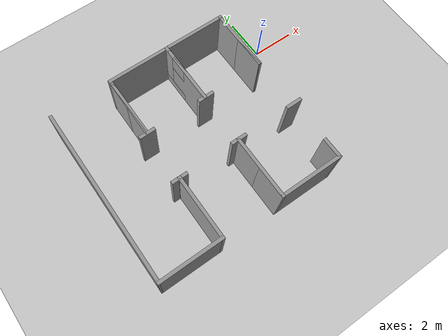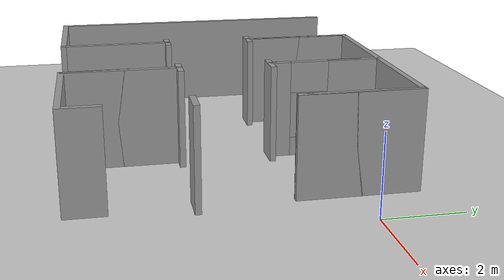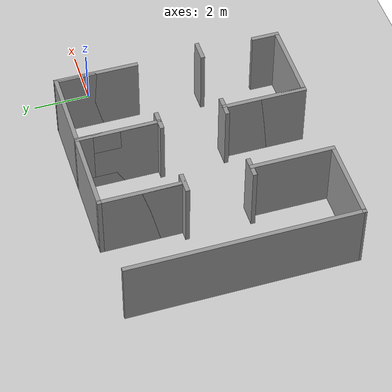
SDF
<sdf version="1.7">
 <world name="default">
  <model name="ground_plane">
   <static>1</static>
   <link name="link">
    <collision name="collision">
     <geometry><plane><normal>0 0 1</normal><size>100 100</size></plane></geometry>
     <surface>
      <contact><collide_bitmask>65535</collide_bitmask></contact>
      <friction><ode><mu>100</mu><mu2>50</mu2></ode></friction>
     </surface>
    </collision>
    <visual name="visual">
     <cast_shadows>0</cast_shadows>
     <geometry><plane><normal>0 0 1</normal><size>100 100</size></plane></geometry>
     <material>
      <script><uri>file://media/materials/scripts/gazebo.material</uri><name>Gazebo/Grey</name></script>
     </material>
    </visual>
   </link>
  </model>
  <model name="test_office_top">
   <link name="Wall_11">
    <pose>-11.0535 2.61067 0 0 0 -1.5708</pose>
    <visual name="Wall_11_Visual">
     <pose>0 0 1.25 0 -0 0</pose>
     <geometry><box><size>3 0.15 2.5</size></box></geometry>
     <material>
      <script><uri>file://media/materials/scripts/gazebo.material</uri><name>Gazebo/Grey</name></script>
      <ambient>1 1 1 1</ambient>
      <shader type="pixel"/>
     </material>
     <meta><layer>0</layer></meta>
    </visual>
    <collision name="Wall_11_Collision">
     <pose>0 0 1.25 0 -0 0</pose>
     <geometry><box><size>3 0.15 2.5</size></box></geometry>
     <surface>
      <friction>
       <ode><mu>1</mu><mu2>1</mu2><fdir1>0 0 0</fdir1><slip1>0</slip1><slip2>0</slip2></ode>
       <torsional>
        <coefficient>1</coefficient>
        <patch_radius>0</patch_radius>
        <surface_radius>0</surface_radius>
        <use_patch_radius>1</use_patch_radius>
        <ode><slip>0</slip></ode>
       </torsional>
      </friction>
      <bounce><restitution_coefficient>0</restitution_coefficient><threshold>1e+06</threshold></bounce>
      <contact>
       <collide_without_contact>0</collide_without_contact>
       <collide_without_contact_bitmask>1</collide_without_contact_bitmask>
       <collide_bitmask>1</collide_bitmask>
       <ode>
        <soft_cfm>0</soft_cfm>
        <soft_erp>0.2</soft_erp>
        <kp>1e+13</kp>
        <kd>1</kd>
        <max_vel>0.01</max_vel>
        <min_depth>0</min_depth>
       </ode>
       <bullet>
        <split_impulse>1</split_impulse>
        <split_impulse_penetration_threshold>-0.01</split_impulse_penetration_threshold>
        <soft_cfm>0</soft_cfm>
        <soft_erp>0.2</soft_erp>
        <kp>1e+13</kp>
        <kd>1</kd>
       </bullet>
      </contact>
     </surface>
    </collision>
   </link>
   <link name="Wall_12">
    <pose>-11.0535 2.61067 0 0 -0 1.5708</pose>
    <visual name="Wall_12_Visual">
     <pose>0 0 1.25 0 -0 0</pose>
     <geometry><box><size>3 0.15 2.5</size></box></geometry>
     <material>
      <script><uri>file://media/materials/scripts/gazebo.material</uri><name>Gazebo/Grey</name></script>
      <ambient>1 1 1 1</ambient>
      <shader type="pixel"/>
     </material>
     <meta><layer>0</layer></meta>
    </visual>
    <collision name="Wall_12_Collision">
     <pose>0 0 1.25 0 -0 0</pose>
     <geometry><box><size>3 0.15 2.5</size></box></geometry>
     <surface>
      <friction>
       <ode><mu>1</mu><mu2>1</mu2><fdir1>0 0 0</fdir1><slip1>0</slip1><slip2>0</slip2></ode>
       <torsional>
        <coefficient>1</coefficient>
        <patch_radius>0</patch_radius>
        <surface_radius>0</surface_radius>
        <use_patch_radius>1</use_patch_radius>
        <ode><slip>0</slip></ode>
       </torsional>
      </friction>
      <bounce><restitution_coefficient>0</restitution_coefficient><threshold>1e+06</threshold></bounce>
      <contact>
       <collide_without_contact>0</collide_without_contact>
       <collide_without_contact_bitmask>1</collide_without_contact_bitmask>
       <collide_bitmask>1</collide_bitmask>
       <ode>
        <soft_cfm>0</soft_cfm>
        <soft_erp>0.2</soft_erp>
        <kp>1e+13</kp>
        <kd>1</kd>
        <max_vel>0.01</max_vel>
        <min_depth>0</min_depth>
       </ode>
       <bullet>
        <split_impulse>1</split_impulse>
        <split_impulse_penetration_threshold>-0.01</split_impulse_penetration_threshold>
        <soft_cfm>0</soft_cfm>
        <soft_erp>0.2</soft_erp>
        <kp>1e+13</kp>
        <kd>1</kd>
       </bullet>
      </contact>
     </surface>
    </collision>
   </link>
   <link name="Wall_13">
    <pose>-9.62852 4.03566 0 0 -0 0</pose>
    <visual name="Wall_13_Visual">
     <pose>0 0 1.25 0 -0 0</pose>
     <geometry><box><size>3 0.15 2.5</size></box></geometry>
     <material>
      <script><uri>file://media/materials/scripts/gazebo.material</uri><name>Gazebo/Grey</name></script>
      <ambient>1 1 1 1</ambient>
      <shader type="pixel"/>
     </material>
     <meta><layer>0</layer></meta>
    </visual>
    <collision name="Wall_13_Collision">
     <pose>0 0 1.25 0 -0 0</pose>
     <geometry><box><size>3 0.15 2.5</size></box></geometry>
     <surface>
      <friction>
       <ode><mu>1</mu><mu2>1</mu2><fdir1>0 0 0</fdir1><slip1>0</slip1><slip2>0</slip2></ode>
       <torsional>
        <coefficient>1</coefficient>
        <patch_radius>0</patch_radius>
        <surface_radius>0</surface_radius>
        <use_patch_radius>1</use_patch_radius>
        <ode><slip>0</slip></ode>
       </torsional>
      </friction>
      <bounce><restitution_coefficient>0</restitution_coefficient><threshold>1e+06</threshold></bounce>
      <contact>
       <collide_without_contact>0</collide_without_contact>
       <collide_without_contact_bitmask>1</collide_without_contact_bitmask>
       <collide_bitmask>1</collide_bitmask>
       <ode>
        <soft_cfm>0</soft_cfm>
        <soft_erp>0.2</soft_erp>
        <kp>1e+13</kp>
        <kd>1</kd>
        <max_vel>0.01</max_vel>
        <min_depth>0</min_depth>
       </ode>
       <bullet>
        <split_impulse>1</split_impulse>
        <split_impulse_penetration_threshold>-0.01</split_impulse_penetration_threshold>
        <soft_cfm>0</soft_cfm>
        <soft_erp>0.2</soft_erp>
        <kp>1e+13</kp>
        <kd>1</kd>
       </bullet>
      </contact>
     </surface>
    </collision>
   </link>
   <link name="Wall_14">
    <pose>-8.20352 2.61067 0 0 0 -1.5708</pose>
    <visual name="Wall_14_Visual">
     <pose>0 0 1.25 0 -0 0</pose>
     <geometry><box><size>3 0.15 2.5</size></box></geometry>
     <material>
      <script><uri>file://media/materials/scripts/gazebo.material</uri><name>Gazebo/Grey</name></script>
      <ambient>1 1 1 1</ambient>
      <shader type="pixel"/>
     </material>
     <meta><layer>0</layer></meta>
    </visual>
    <collision name="Wall_14_Collision">
     <pose>0 0 1.25 0 -0 0</pose>
     <geometry><box><size>3 0.15 2.5</size></box></geometry>
     <surface>
      <friction>
       <ode><mu>1</mu><mu2>1</mu2><fdir1>0 0 0</fdir1><slip1>0</slip1><slip2>0</slip2></ode>
       <torsional>
        <coefficient>1</coefficient>
        <patch_radius>0</patch_radius>
        <surface_radius>0</surface_radius>
        <use_patch_radius>1</use_patch_radius>
        <ode><slip>0</slip></ode>
       </torsional>
      </friction>
      <bounce><restitution_coefficient>0</restitution_coefficient><threshold>1e+06</threshold></bounce>
      <contact>
       <collide_without_contact>0</collide_without_contact>
       <collide_without_contact_bitmask>1</collide_without_contact_bitmask>
       <collide_bitmask>1</collide_bitmask>
       <ode>
        <soft_cfm>0</soft_cfm>
        <soft_erp>0.2</soft_erp>
        <kp>1e+13</kp>
        <kd>1</kd>
        <max_vel>0.01</max_vel>
        <min_depth>0</min_depth>
       </ode>
       <bullet>
        <split_impulse>1</split_impulse>
        <split_impulse_penetration_threshold>-0.01</split_impulse_penetration_threshold>
        <soft_cfm>0</soft_cfm>
        <soft_erp>0.2</soft_erp>
        <kp>1e+13</kp>
        <kd>1</kd>
       </bullet>
      </contact>
     </surface>
    </collision>
   </link>
   <link name="Wall_15">
    <pose>-8.20352 2.61067 0 0 -0 1.5708</pose>
    <visual name="Wall_15_Visual_0">
     <pose>-1.21259 0 1.25 0 -0 0</pose>
     <geometry><box><size>0.574817 0.15 2.5</size></box></geometry>
     <material>
      <script><uri>file://media/materials/scripts/gazebo.material</uri><name>Gazebo/Grey</name></script>
      <ambient>1 1 1 1</ambient>
      <shader type="pixel"/>
     </material>
     <meta><layer>0</layer></meta>
    </visual>
    <visual name="Wall_15_Visual_1">
     <pose>0.287408 0 0.25 0 -0 0</pose>
     <geometry><box><size>2.42518 0.15 0.5</size></box></geometry>
     <material>
      <script><uri>file://media/materials/scripts/gazebo.material</uri><name>Gazebo/Grey</name></script>
      <ambient>1 1 1 1</ambient>
      <shader type="pixel"/>
     </material>
     <meta><layer>0</layer></meta>
    </visual>
    <visual name="Wall_15_Visual_2">
     <pose>1.18741 0 1.5 0 -0 0</pose>
     <geometry><box><size>0.625183 0.15 2</size></box></geometry>
     <material>
      <script><uri>file://media/materials/scripts/gazebo.material</uri><name>Gazebo/Grey</name></script>
      <ambient>1 1 1 1</ambient>
      <shader type="pixel"/>
     </material>
     <meta><layer>0</layer></meta>
    </visual>
    <visual name="Wall_15_Visual_3">
     <pose>-0.025183 0 2.1 0 -0 0</pose>
     <geometry><box><size>1.8 0.15 0.8</size></box></geometry>
     <material>
      <script><uri>file://media/materials/scripts/gazebo.material</uri><name>Gazebo/Grey</name></script>
      <ambient>1 1 1 1</ambient>
      <shader type="pixel"/>
     </material>
     <meta><layer>0</layer></meta>
    </visual>
    <collision name="Wall_15_Collision_3">
     <pose>-0.025183 0 2.1 0 -0 0</pose>
     <geometry><box><size>1.8 0.15 0.8</size></box></geometry>
     <surface>
      <friction>
       <ode><mu>1</mu><mu2>1</mu2><fdir1>0 0 0</fdir1><slip1>0</slip1><slip2>0</slip2></ode>
       <torsional>
        <coefficient>1</coefficient>
        <patch_radius>0</patch_radius>
        <surface_radius>0</surface_radius>
        <use_patch_radius>1</use_patch_radius>
        <ode><slip>0</slip></ode>
       </torsional>
      </friction>
      <bounce><restitution_coefficient>0</restitution_coefficient><threshold>1e+06</threshold></bounce>
      <contact>
       <collide_without_contact>0</collide_without_contact>
       <collide_without_contact_bitmask>1</collide_without_contact_bitmask>
       <collide_bitmask>1</collide_bitmask>
       <ode>
        <soft_cfm>0</soft_cfm>
        <soft_erp>0.2</soft_erp>
        <kp>1e+13</kp>
        <kd>1</kd>
        <max_vel>0.01</max_vel>
        <min_depth>0</min_depth>
       </ode>
       <bullet>
        <split_impulse>1</split_impulse>
        <split_impulse_penetration_threshold>-0.01</split_impulse_penetration_threshold>
        <soft_cfm>0</soft_cfm>
        <soft_erp>0.2</soft_erp>
        <kp>1e+13</kp>
        <kd>1</kd>
       </bullet>
      </contact>
     </surface>
    </collision>
    <collision name="Wall_15_Collision_0">
     <pose>-1.21259 0 1.25 0 -0 0</pose>
     <geometry><box><size>0.574817 0.15 2.5</size></box></geometry>
     <surface>
      <friction>
       <ode><mu>1</mu><mu2>1</mu2><fdir1>0 0 0</fdir1><slip1>0</slip1><slip2>0</slip2></ode>
       <torsional>
        <coefficient>1</coefficient>
        <patch_radius>0</patch_radius>
        <surface_radius>0</surface_radius>
        <use_patch_radius>1</use_patch_radius>
        <ode><slip>0</slip></ode>
       </torsional>
      </friction>
      <bounce><restitution_coefficient>0</restitution_coefficient><threshold>1e+06</threshold></bounce>
      <contact>
       <collide_without_contact>0</collide_without_contact>
       <collide_without_contact_bitmask>1</collide_without_contact_bitmask>
       <collide_bitmask>1</collide_bitmask>
       <ode>
        <soft_cfm>0</soft_cfm>
        <soft_erp>0.2</soft_erp>
        <kp>1e+13</kp>
        <kd>1</kd>
        <max_vel>0.01</max_vel>
        <min_depth>0</min_depth>
       </ode>
       <bullet>
        <split_impulse>1</split_impulse>
        <split_impulse_penetration_threshold>-0.01</split_impulse_penetration_threshold>
        <soft_cfm>0</soft_cfm>
        <soft_erp>0.2</soft_erp>
        <kp>1e+13</kp>
        <kd>1</kd>
       </bullet>
      </contact>
     </surface>
    </collision>
    <collision name="Wall_15_Collision_1">
     <pose>0.287408 0 0.25 0 -0 0</pose>
     <geometry><box><size>2.42518 0.15 0.5</size></box></geometry>
     <surface>
      <friction>
       <ode><mu>1</mu><mu2>1</mu2><fdir1>0 0 0</fdir1><slip1>0</slip1><slip2>0</slip2></ode>
       <torsional>
        <coefficient>1</coefficient>
        <patch_radius>0</patch_radius>
        <surface_radius>0</surface_radius>
        <use_patch_radius>1</use_patch_radius>
        <ode><slip>0</slip></ode>
       </torsional>
      </friction>
      <bounce><restitution_coefficient>0</restitution_coefficient><threshold>1e+06</threshold></bounce>
      <contact>
       <collide_without_contact>0</collide_without_contact>
       <collide_without_contact_bitmask>1</collide_without_contact_bitmask>
       <collide_bitmask>1</collide_bitmask>
       <ode>
        <soft_cfm>0</soft_cfm>
        <soft_erp>0.2</soft_erp>
        <kp>1e+13</kp>
        <kd>1</kd>
        <max_vel>0.01</max_vel>
        <min_depth>0</min_depth>
       </ode>
       <bullet>
        <split_impulse>1</split_impulse>
        <split_impulse_penetration_threshold>-0.01</split_impulse_penetration_threshold>
        <soft_cfm>0</soft_cfm>
        <soft_erp>0.2</soft_erp>
        <kp>1e+13</kp>
        <kd>1</kd>
       </bullet>
      </contact>
     </surface>
    </collision>
    <collision name="Wall_15_Collision_2">
     <pose>1.18741 0 1.5 0 -0 0</pose>
     <geometry><box><size>0.625183 0.15 2</size></box></geometry>
     <surface>
      <friction>
       <ode><mu>1</mu><mu2>1</mu2><fdir1>0 0 0</fdir1><slip1>0</slip1><slip2>0</slip2></ode>
       <torsional>
        <coefficient>1</coefficient>
        <patch_radius>0</patch_radius>
        <surface_radius>0</surface_radius>
        <use_patch_radius>1</use_patch_radius>
        <ode><slip>0</slip></ode>
       </torsional>
      </friction>
      <bounce><restitution_coefficient>0</restitution_coefficient><threshold>1e+06</threshold></bounce>
      <contact>
       <collide_without_contact>0</collide_without_contact>
       <collide_without_contact_bitmask>1</collide_without_contact_bitmask>
       <collide_bitmask>1</collide_bitmask>
       <ode>
        <soft_cfm>0</soft_cfm>
        <soft_erp>0.2</soft_erp>
        <kp>1e+13</kp>
        <kd>1</kd>
        <max_vel>0.01</max_vel>
        <min_depth>0</min_depth>
       </ode>
       <bullet>
        <split_impulse>1</split_impulse>
        <split_impulse_penetration_threshold>-0.01</split_impulse_penetration_threshold>
        <soft_cfm>0</soft_cfm>
        <soft_erp>0.2</soft_erp>
        <kp>1e+13</kp>
        <kd>1</kd>
       </bullet>
      </contact>
     </surface>
    </collision>
   </link>
   <link name="Wall_16">
    <pose>-6.77852 4.03566 0 0 -0 0</pose>
    <visual name="Wall_16_Visual">
     <pose>0 0 1.25 0 -0 0</pose>
     <geometry><box><size>3 0.15 2.5</size></box></geometry>
     <material>
      <script><uri>file://media/materials/scripts/gazebo.material</uri><name>Gazebo/Grey</name></script>
      <ambient>1 1 1 1</ambient>
      <shader type="pixel"/>
     </material>
     <meta><layer>0</layer></meta>
    </visual>
    <collision name="Wall_16_Collision">
     <pose>0 0 1.25 0 -0 0</pose>
     <geometry><box><size>3 0.15 2.5</size></box></geometry>
     <surface>
      <friction>
       <ode><mu>1</mu><mu2>1</mu2><fdir1>0 0 0</fdir1><slip1>0</slip1><slip2>0</slip2></ode>
       <torsional>
        <coefficient>1</coefficient>
        <patch_radius>0</patch_radius>
        <surface_radius>0</surface_radius>
        <use_patch_radius>1</use_patch_radius>
        <ode><slip>0</slip></ode>
       </torsional>
      </friction>
      <bounce><restitution_coefficient>0</restitution_coefficient><threshold>1e+06</threshold></bounce>
      <contact>
       <collide_without_contact>0</collide_without_contact>
       <collide_without_contact_bitmask>1</collide_without_contact_bitmask>
       <collide_bitmask>1</collide_bitmask>
       <ode>
        <soft_cfm>0</soft_cfm>
        <soft_erp>0.2</soft_erp>
        <kp>1e+13</kp>
        <kd>1</kd>
        <max_vel>0.01</max_vel>
        <min_depth>0</min_depth>
       </ode>
       <bullet>
        <split_impulse>1</split_impulse>
        <split_impulse_penetration_threshold>-0.01</split_impulse_penetration_threshold>
        <soft_cfm>0</soft_cfm>
        <soft_erp>0.2</soft_erp>
        <kp>1e+13</kp>
        <kd>1</kd>
       </bullet>
      </contact>
     </surface>
    </collision>
   </link>
   <link name="Wall_17">
    <pose>-5.35352 2.61067 0 0 0 -1.5708</pose>
    <visual name="Wall_17_Visual">
     <pose>0 0 1.25 0 -0 0</pose>
     <geometry><box><size>3 0.15 2.5</size></box></geometry>
     <material>
      <script><uri>file://media/materials/scripts/gazebo.material</uri><name>Gazebo/Grey</name></script>
      <ambient>1 1 1 1</ambient>
      <shader type="pixel"/>
     </material>
     <meta><layer>0</layer></meta>
    </visual>
    <collision name="Wall_17_Collision">
     <pose>0 0 1.25 0 -0 0</pose>
     <geometry><box><size>3 0.15 2.5</size></box></geometry>
     <surface>
      <friction>
       <ode><mu>1</mu><mu2>1</mu2><fdir1>0 0 0</fdir1><slip1>0</slip1><slip2>0</slip2></ode>
       <torsional>
        <coefficient>1</coefficient>
        <patch_radius>0</patch_radius>
        <surface_radius>0</surface_radius>
        <use_patch_radius>1</use_patch_radius>
        <ode><slip>0</slip></ode>
       </torsional>
      </friction>
      <bounce><restitution_coefficient>0</restitution_coefficient><threshold>1e+06</threshold></bounce>
      <contact>
       <collide_without_contact>0</collide_without_contact>
       <collide_without_contact_bitmask>1</collide_without_contact_bitmask>
       <collide_bitmask>1</collide_bitmask>
       <ode>
        <soft_cfm>0</soft_cfm>
        <soft_erp>0.2</soft_erp>
        <kp>1e+13</kp>
        <kd>1</kd>
        <max_vel>0.01</max_vel>
        <min_depth>0</min_depth>
       </ode>
       <bullet>
        <split_impulse>1</split_impulse>
        <split_impulse_penetration_threshold>-0.01</split_impulse_penetration_threshold>
        <soft_cfm>0</soft_cfm>
        <soft_erp>0.2</soft_erp>
        <kp>1e+13</kp>
        <kd>1</kd>
       </bullet>
      </contact>
     </surface>
    </collision>
   </link>
   <link name="Wall_18">
    <pose>-5.35352 2.61067 0 0 -0 1.5708</pose>
    <visual name="Wall_18_Visual">
     <pose>0 0 1.25 0 -0 0</pose>
     <geometry><box><size>3 0.15 2.5</size></box></geometry>
     <material>
      <script><uri>file://media/materials/scripts/gazebo.material</uri><name>Gazebo/Grey</name></script>
      <ambient>1 1 1 1</ambient>
      <shader type="pixel"/>
     </material>
     <meta><layer>0</layer></meta>
    </visual>
    <collision name="Wall_18_Collision">
     <pose>0 0 1.25 0 -0 0</pose>
     <geometry><box><size>3 0.15 2.5</size></box></geometry>
     <surface>
      <friction>
       <ode><mu>1</mu><mu2>1</mu2><fdir1>0 0 0</fdir1><slip1>0</slip1><slip2>0</slip2></ode>
       <torsional>
        <coefficient>1</coefficient>
        <patch_radius>0</patch_radius>
        <surface_radius>0</surface_radius>
        <use_patch_radius>1</use_patch_radius>
        <ode><slip>0</slip></ode>
       </torsional>
      </friction>
      <bounce><restitution_coefficient>0</restitution_coefficient><threshold>1e+06</threshold></bounce>
      <contact>
       <collide_without_contact>0</collide_without_contact>
       <collide_without_contact_bitmask>1</collide_without_contact_bitmask>
       <collide_bitmask>1</collide_bitmask>
       <ode>
        <soft_cfm>0</soft_cfm>
        <soft_erp>0.2</soft_erp>
        <kp>1e+13</kp>
        <kd>1</kd>
        <max_vel>0.01</max_vel>
        <min_depth>0</min_depth>
       </ode>
       <bullet>
        <split_impulse>1</split_impulse>
        <split_impulse_penetration_threshold>-0.01</split_impulse_penetration_threshold>
        <soft_cfm>0</soft_cfm>
        <soft_erp>0.2</soft_erp>
        <kp>1e+13</kp>
        <kd>1</kd>
       </bullet>
      </contact>
     </surface>
    </collision>
   </link>
   <link name="Wall_24">
    <pose>-11.0485 -1.16433 0 0 -0 0</pose>
    <visual name="Wall_24_Visual">
     <pose>0 0 1.25 0 -0 0</pose>
     <geometry><box><size>0.16 0.15 2.5</size></box></geometry>
     <material>
      <script><uri>file://media/materials/scripts/gazebo.material</uri><name>Gazebo/Grey</name></script>
      <ambient>1 1 1 1</ambient>
      <shader type="pixel"/>
     </material>
     <meta><layer>0</layer></meta>
    </visual>
    <collision name="Wall_24_Collision">
     <pose>0 0 1.25 0 -0 0</pose>
     <geometry><box><size>0.16 0.15 2.5</size></box></geometry>
     <surface>
      <friction>
       <ode><mu>1</mu><mu2>1</mu2><fdir1>0 0 0</fdir1><slip1>0</slip1><slip2>0</slip2></ode>
       <torsional>
        <coefficient>1</coefficient>
        <patch_radius>0</patch_radius>
        <surface_radius>0</surface_radius>
        <use_patch_radius>1</use_patch_radius>
        <ode><slip>0</slip></ode>
       </torsional>
      </friction>
      <bounce><restitution_coefficient>0</restitution_coefficient><threshold>1e+06</threshold></bounce>
      <contact>
       <collide_without_contact>0</collide_without_contact>
       <collide_without_contact_bitmask>1</collide_without_contact_bitmask>
       <collide_bitmask>1</collide_bitmask>
       <ode>
        <soft_cfm>0</soft_cfm>
        <soft_erp>0.2</soft_erp>
        <kp>1e+13</kp>
        <kd>1</kd>
        <max_vel>0.01</max_vel>
        <min_depth>0</min_depth>
       </ode>
       <bullet>
        <split_impulse>1</split_impulse>
        <split_impulse_penetration_threshold>-0.01</split_impulse_penetration_threshold>
        <soft_cfm>0</soft_cfm>
        <soft_erp>0.2</soft_erp>
        <kp>1e+13</kp>
        <kd>1</kd>
       </bullet>
      </contact>
     </surface>
    </collision>
   </link>
   <link name="Wall_25">
    <pose>-11.0435 -2.58934 0 0 0 -1.5708</pose>
    <visual name="Wall_25_Visual">
     <pose>0 0 1.25 0 -0 0</pose>
     <geometry><box><size>3 0.15 2.5</size></box></geometry>
     <material>
      <script><uri>file://media/materials/scripts/gazebo.material</uri><name>Gazebo/Grey</name></script>
      <ambient>1 1 1 1</ambient>
      <shader type="pixel"/>
     </material>
     <meta><layer>0</layer></meta>
    </visual>
    <collision name="Wall_25_Collision">
     <pose>0 0 1.25 0 -0 0</pose>
     <geometry><box><size>3 0.15 2.5</size></box></geometry>
     <surface>
      <friction>
       <ode><mu>1</mu><mu2>1</mu2><fdir1>0 0 0</fdir1><slip1>0</slip1><slip2>0</slip2></ode>
       <torsional>
        <coefficient>1</coefficient>
        <patch_radius>0</patch_radius>
        <surface_radius>0</surface_radius>
        <use_patch_radius>1</use_patch_radius>
        <ode><slip>0</slip></ode>
       </torsional>
      </friction>
      <bounce><restitution_coefficient>0</restitution_coefficient><threshold>1e+06</threshold></bounce>
      <contact>
       <collide_without_contact>0</collide_without_contact>
       <collide_without_contact_bitmask>1</collide_without_contact_bitmask>
       <collide_bitmask>1</collide_bitmask>
       <ode>
        <soft_cfm>0</soft_cfm>
        <soft_erp>0.2</soft_erp>
        <kp>1e+13</kp>
        <kd>1</kd>
        <max_vel>0.01</max_vel>
        <min_depth>0</min_depth>
       </ode>
       <bullet>
        <split_impulse>1</split_impulse>
        <split_impulse_penetration_threshold>-0.01</split_impulse_penetration_threshold>
        <soft_cfm>0</soft_cfm>
        <soft_erp>0.2</soft_erp>
        <kp>1e+13</kp>
        <kd>1</kd>
       </bullet>
      </contact>
     </surface>
    </collision>
   </link>
   <link name="Wall_26">
    <pose>-12.4685 -4.01433 0 0 -0 3.14159</pose>
    <visual name="Wall_26_Visual">
     <pose>0 0 1.25 0 -0 0</pose>
     <geometry><box><size>3 0.15 2.5</size></box></geometry>
     <material>
      <script><uri>file://media/materials/scripts/gazebo.material</uri><name>Gazebo/Grey</name></script>
      <ambient>1 1 1 1</ambient>
      <shader type="pixel"/>
     </material>
     <meta><layer>0</layer></meta>
    </visual>
    <collision name="Wall_26_Collision">
     <pose>0 0 1.25 0 -0 0</pose>
     <geometry><box><size>3 0.15 2.5</size></box></geometry>
     <surface>
      <friction>
       <ode><mu>1</mu><mu2>1</mu2><fdir1>0 0 0</fdir1><slip1>0</slip1><slip2>0</slip2></ode>
       <torsional>
        <coefficient>1</coefficient>
        <patch_radius>0</patch_radius>
        <surface_radius>0</surface_radius>
        <use_patch_radius>1</use_patch_radius>
        <ode><slip>0</slip></ode>
       </torsional>
      </friction>
      <bounce><restitution_coefficient>0</restitution_coefficient><threshold>1e+06</threshold></bounce>
      <contact>
       <collide_without_contact>0</collide_without_contact>
       <collide_without_contact_bitmask>1</collide_without_contact_bitmask>
       <collide_bitmask>1</collide_bitmask>
       <ode>
        <soft_cfm>0</soft_cfm>
        <soft_erp>0.2</soft_erp>
        <kp>1e+13</kp>
        <kd>1</kd>
        <max_vel>0.01</max_vel>
        <min_depth>0</min_depth>
       </ode>
       <bullet>
        <split_impulse>1</split_impulse>
        <split_impulse_penetration_threshold>-0.01</split_impulse_penetration_threshold>
        <soft_cfm>0</soft_cfm>
        <soft_erp>0.2</soft_erp>
        <kp>1e+13</kp>
        <kd>1</kd>
       </bullet>
      </contact>
     </surface>
    </collision>
   </link>
   <link name="Wall_29">
    <pose>-8.19352 -2.58934 0 0 -0 1.5708</pose>
    <visual name="Wall_29_Visual">
     <pose>0 0 1.25 0 -0 0</pose>
     <geometry><box><size>3 0.15 2.5</size></box></geometry>
     <material>
      <script><uri>file://media/materials/scripts/gazebo.material</uri><name>Gazebo/Grey</name></script>
      <ambient>1 1 1 1</ambient>
      <shader type="pixel"/>
     </material>
     <meta><layer>0</layer></meta>
    </visual>
    <collision name="Wall_29_Collision">
     <pose>0 0 1.25 0 -0 0</pose>
     <geometry><box><size>3 0.15 2.5</size></box></geometry>
     <surface>
      <friction>
       <ode><mu>1</mu><mu2>1</mu2><fdir1>0 0 0</fdir1><slip1>0</slip1><slip2>0</slip2></ode>
       <torsional>
        <coefficient>1</coefficient>
        <patch_radius>0</patch_radius>
        <surface_radius>0</surface_radius>
        <use_patch_radius>1</use_patch_radius>
        <ode><slip>0</slip></ode>
       </torsional>
      </friction>
      <bounce><restitution_coefficient>0</restitution_coefficient><threshold>1e+06</threshold></bounce>
      <contact>
       <collide_without_contact>0</collide_without_contact>
       <collide_without_contact_bitmask>1</collide_without_contact_bitmask>
       <collide_bitmask>1</collide_bitmask>
       <ode>
        <soft_cfm>0</soft_cfm>
        <soft_erp>0.2</soft_erp>
        <kp>1e+13</kp>
        <kd>1</kd>
        <max_vel>0.01</max_vel>
        <min_depth>0</min_depth>
       </ode>
       <bullet>
        <split_impulse>1</split_impulse>
        <split_impulse_penetration_threshold>-0.01</split_impulse_penetration_threshold>
        <soft_cfm>0</soft_cfm>
        <soft_erp>0.2</soft_erp>
        <kp>1e+13</kp>
        <kd>1</kd>
       </bullet>
      </contact>
     </surface>
    </collision>
   </link>
   <link name="Wall_30">
    <pose>-8.19352 -2.58934 0 0 0 -1.5708</pose>
    <visual name="Wall_30_Visual">
     <pose>0 0 1.25 0 -0 0</pose>
     <geometry><box><size>3 0.15 2.5</size></box></geometry>
     <material>
      <script><uri>file://media/materials/scripts/gazebo.material</uri><name>Gazebo/Grey</name></script>
      <ambient>1 1 1 1</ambient>
      <shader type="pixel"/>
     </material>
     <meta><layer>0</layer></meta>
    </visual>
    <collision name="Wall_30_Collision">
     <pose>0 0 1.25 0 -0 0</pose>
     <geometry><box><size>3 0.15 2.5</size></box></geometry>
     <surface>
      <friction>
       <ode><mu>1</mu><mu2>1</mu2><fdir1>0 0 0</fdir1><slip1>0</slip1><slip2>0</slip2></ode>
       <torsional>
        <coefficient>1</coefficient>
        <patch_radius>0</patch_radius>
        <surface_radius>0</surface_radius>
        <use_patch_radius>1</use_patch_radius>
        <ode><slip>0</slip></ode>
       </torsional>
      </friction>
      <bounce><restitution_coefficient>0</restitution_coefficient><threshold>1e+06</threshold></bounce>
      <contact>
       <collide_without_contact>0</collide_without_contact>
       <collide_without_contact_bitmask>1</collide_without_contact_bitmask>
       <collide_bitmask>1</collide_bitmask>
       <ode>
        <soft_cfm>0</soft_cfm>
        <soft_erp>0.2</soft_erp>
        <kp>1e+13</kp>
        <kd>1</kd>
        <max_vel>0.01</max_vel>
        <min_depth>0</min_depth>
       </ode>
       <bullet>
        <split_impulse>1</split_impulse>
        <split_impulse_penetration_threshold>-0.01</split_impulse_penetration_threshold>
        <soft_cfm>0</soft_cfm>
        <soft_erp>0.2</soft_erp>
        <kp>1e+13</kp>
        <kd>1</kd>
       </bullet>
      </contact>
     </surface>
    </collision>
   </link>
   <link name="Wall_31">
    <pose>-6.76852 -4.01433 0 0 -0 0</pose>
    <visual name="Wall_31_Visual">
     <pose>0 0 1.25 0 -0 0</pose>
     <geometry><box><size>3 0.15 2.5</size></box></geometry>
     <material>
      <script><uri>file://media/materials/scripts/gazebo.material</uri><name>Gazebo/Grey</name></script>
      <ambient>1 1 1 1</ambient>
      <shader type="pixel"/>
     </material>
     <meta><layer>0</layer></meta>
    </visual>
    <collision name="Wall_31_Collision">
     <pose>0 0 1.25 0 -0 0</pose>
     <geometry><box><size>3 0.15 2.5</size></box></geometry>
     <surface>
      <friction>
       <ode><mu>1</mu><mu2>1</mu2><fdir1>0 0 0</fdir1><slip1>0</slip1><slip2>0</slip2></ode>
       <torsional>
        <coefficient>1</coefficient>
        <patch_radius>0</patch_radius>
        <surface_radius>0</surface_radius>
        <use_patch_radius>1</use_patch_radius>
        <ode><slip>0</slip></ode>
       </torsional>
      </friction>
      <bounce><restitution_coefficient>0</restitution_coefficient><threshold>1e+06</threshold></bounce>
      <contact>
       <collide_without_contact>0</collide_without_contact>
       <collide_without_contact_bitmask>1</collide_without_contact_bitmask>
       <collide_bitmask>1</collide_bitmask>
       <ode>
        <soft_cfm>0</soft_cfm>
        <soft_erp>0.2</soft_erp>
        <kp>1e+13</kp>
        <kd>1</kd>
        <max_vel>0.01</max_vel>
        <min_depth>0</min_depth>
       </ode>
       <bullet>
        <split_impulse>1</split_impulse>
        <split_impulse_penetration_threshold>-0.01</split_impulse_penetration_threshold>
        <soft_cfm>0</soft_cfm>
        <soft_erp>0.2</soft_erp>
        <kp>1e+13</kp>
        <kd>1</kd>
       </bullet>
      </contact>
     </surface>
    </collision>
   </link>
   <link name="Wall_37">
    <pose>-13.8985 -0.017761 0 0 -0 1.57205</pose>
    <visual name="Wall_37_Visual">
     <pose>0 0 1.25 0 -0 0</pose>
     <geometry><box><size>8.14315 0.15 2.5</size></box></geometry>
     <material>
      <script><uri>file://media/materials/scripts/gazebo.material</uri><name>Gazebo/Grey</name></script>
      <ambient>1 1 1 1</ambient>
      <shader type="pixel"/>
     </material>
     <meta><layer>0</layer></meta>
    </visual>
    <collision name="Wall_37_Collision">
     <pose>0 0 1.25 0 -0 0</pose>
     <geometry><box><size>8.14315 0.15 2.5</size></box></geometry>
     <surface>
      <friction>
       <ode><mu>1</mu><mu2>1</mu2><fdir1>0 0 0</fdir1><slip1>0</slip1><slip2>0</slip2></ode>
       <torsional>
        <coefficient>1</coefficient>
        <patch_radius>0</patch_radius>
        <surface_radius>0</surface_radius>
        <use_patch_radius>1</use_patch_radius>
        <ode><slip>0</slip></ode>
       </torsional>
      </friction>
      <bounce><restitution_coefficient>0</restitution_coefficient><threshold>1e+06</threshold></bounce>
      <contact>
       <collide_without_contact>0</collide_without_contact>
       <collide_without_contact_bitmask>1</collide_without_contact_bitmask>
       <collide_bitmask>1</collide_bitmask>
       <ode>
        <soft_cfm>0</soft_cfm>
        <soft_erp>0.2</soft_erp>
        <kp>1e+13</kp>
        <kd>1</kd>
        <max_vel>0.01</max_vel>
        <min_depth>0</min_depth>
       </ode>
       <bullet>
        <split_impulse>1</split_impulse>
        <split_impulse_penetration_threshold>-0.01</split_impulse_penetration_threshold>
        <soft_cfm>0</soft_cfm>
        <soft_erp>0.2</soft_erp>
        <kp>1e+13</kp>
        <kd>1</kd>
       </bullet>
      </contact>
     </surface>
    </collision>
   </link>
   <link name="Wall_46">
    <pose>-8.16005 1.1595 0 0 -0 0</pose>
    <visual name="Wall_46_Visual">
     <pose>0 0 1.25 0 -0 0</pose>
     <geometry><box><size>0.75 0.15 2.5</size></box></geometry>
     <material>
      <script><uri>file://media/materials/scripts/gazebo.material</uri><name>Gazebo/Grey</name></script>
      <ambient>1 1 1 1</ambient>
      <shader type="pixel"/>
     </material>
     <meta><layer>0</layer></meta>
    </visual>
    <collision name="Wall_46_Collision">
     <pose>0 0 1.25 0 -0 0</pose>
     <geometry><box><size>0.75 0.15 2.5</size></box></geometry>
     <surface>
      <friction>
       <ode><mu>1</mu><mu2>1</mu2><fdir1>0 0 0</fdir1><slip1>0</slip1><slip2>0</slip2></ode>
       <torsional>
        <coefficient>1</coefficient>
        <patch_radius>0</patch_radius>
        <surface_radius>0</surface_radius>
        <use_patch_radius>1</use_patch_radius>
        <ode><slip>0</slip></ode>
       </torsional>
      </friction>
      <bounce><restitution_coefficient>0</restitution_coefficient><threshold>1e+06</threshold></bounce>
      <contact>
       <collide_without_contact>0</collide_without_contact>
       <collide_without_contact_bitmask>1</collide_without_contact_bitmask>
       <collide_bitmask>1</collide_bitmask>
       <ode>
        <soft_cfm>0</soft_cfm>
        <soft_erp>0.2</soft_erp>
        <kp>1e+13</kp>
        <kd>1</kd>
        <max_vel>0.01</max_vel>
        <min_depth>0</min_depth>
       </ode>
       <bullet>
        <split_impulse>1</split_impulse>
        <split_impulse_penetration_threshold>-0.01</split_impulse_penetration_threshold>
        <soft_cfm>0</soft_cfm>
        <soft_erp>0.2</soft_erp>
        <kp>1e+13</kp>
        <kd>1</kd>
       </bullet>
      </contact>
     </surface>
    </collision>
   </link>
   <link name="Wall_57">
    <pose>-11.0599 1.15399 0 0 -0 3.14159</pose>
    <visual name="Wall_57_Visual">
     <pose>0 0 1.25 0 -0 0</pose>
     <geometry><box><size>0.75 0.15 2.5</size></box></geometry>
     <material>
      <script><uri>file://media/materials/scripts/gazebo.material</uri><name>Gazebo/Grey</name></script>
      <ambient>1 1 1 1</ambient>
      <shader type="pixel"/>
     </material>
     <meta><layer>0</layer></meta>
    </visual>
    <collision name="Wall_57_Collision">
     <pose>0 0 1.25 0 -0 0</pose>
     <geometry><box><size>0.75 0.15 2.5</size></box></geometry>
     <surface>
      <friction>
       <ode><mu>1</mu><mu2>1</mu2><fdir1>0 0 0</fdir1><slip1>0</slip1><slip2>0</slip2></ode>
       <torsional>
        <coefficient>1</coefficient>
        <patch_radius>0</patch_radius>
        <surface_radius>0</surface_radius>
        <use_patch_radius>1</use_patch_radius>
        <ode><slip>0</slip></ode>
       </torsional>
      </friction>
      <bounce><restitution_coefficient>0</restitution_coefficient><threshold>1e+06</threshold></bounce>
      <contact>
       <collide_without_contact>0</collide_without_contact>
       <collide_without_contact_bitmask>1</collide_without_contact_bitmask>
       <collide_bitmask>1</collide_bitmask>
       <ode>
        <soft_cfm>0</soft_cfm>
        <soft_erp>0.2</soft_erp>
        <kp>1e+13</kp>
        <kd>1</kd>
        <max_vel>0.01</max_vel>
        <min_depth>0</min_depth>
       </ode>
       <bullet>
        <split_impulse>1</split_impulse>
        <split_impulse_penetration_threshold>-0.01</split_impulse_penetration_threshold>
        <soft_cfm>0</soft_cfm>
        <soft_erp>0.2</soft_erp>
        <kp>1e+13</kp>
        <kd>1</kd>
       </bullet>
      </contact>
     </surface>
    </collision>
   </link>
   <link name="Wall_59">
    <pose>-11.0546 -1.158 0 0 -0 0</pose>
    <visual name="Wall_59_Visual">
     <pose>0 0 1.25 0 -0 0</pose>
     <geometry><box><size>0.75 0.15 2.5</size></box></geometry>
     <material>
      <script><uri>file://media/materials/scripts/gazebo.material</uri><name>Gazebo/Grey</name></script>
      <ambient>1 1 1 1</ambient>
      <shader type="pixel"/>
     </material>
     <meta><layer>0</layer></meta>
    </visual>
    <collision name="Wall_59_Collision">
     <pose>0 0 1.25 0 -0 0</pose>
     <geometry><box><size>0.75 0.15 2.5</size></box></geometry>
     <surface>
      <friction>
       <ode><mu>1</mu><mu2>1</mu2><fdir1>0 0 0</fdir1><slip1>0</slip1><slip2>0</slip2></ode>
       <torsional>
        <coefficient>1</coefficient>
        <patch_radius>0</patch_radius>
        <surface_radius>0</surface_radius>
        <use_patch_radius>1</use_patch_radius>
        <ode><slip>0</slip></ode>
       </torsional>
      </friction>
      <bounce><restitution_coefficient>0</restitution_coefficient><threshold>1e+06</threshold></bounce>
      <contact>
       <collide_without_contact>0</collide_without_contact>
       <collide_without_contact_bitmask>1</collide_without_contact_bitmask>
       <collide_bitmask>1</collide_bitmask>
       <ode>
        <soft_cfm>0</soft_cfm>
        <soft_erp>0.2</soft_erp>
        <kp>1e+13</kp>
        <kd>1</kd>
        <max_vel>0.01</max_vel>
        <min_depth>0</min_depth>
       </ode>
       <bullet>
        <split_impulse>1</split_impulse>
        <split_impulse_penetration_threshold>-0.01</split_impulse_penetration_threshold>
        <soft_cfm>0</soft_cfm>
        <soft_erp>0.2</soft_erp>
        <kp>1e+13</kp>
        <kd>1</kd>
       </bullet>
      </contact>
     </surface>
    </collision>
   </link>
   <link name="Wall_62">
    <pose>-8.17019 -1.15057 0 0 -0 0</pose>
    <visual name="Wall_62_Visual">
     <pose>0 0 1.25 0 -0 0</pose>
     <geometry><box><size>0.75 0.15 2.5</size></box></geometry>
     <material>
      <script><uri>file://media/materials/scripts/gazebo.material</uri><name>Gazebo/Grey</name></script>
      <ambient>1 1 1 1</ambient>
      <shader type="pixel"/>
     </material>
     <meta><layer>0</layer></meta>
    </visual>
    <collision name="Wall_62_Collision">
     <pose>0 0 1.25 0 -0 0</pose>
     <geometry><box><size>0.75 0.15 2.5</size></box></geometry>
     <surface>
      <friction>
       <ode><mu>1</mu><mu2>1</mu2><fdir1>0 0 0</fdir1><slip1>0</slip1><slip2>0</slip2></ode>
       <torsional>
        <coefficient>1</coefficient>
        <patch_radius>0</patch_radius>
        <surface_radius>0</surface_radius>
        <use_patch_radius>1</use_patch_radius>
        <ode><slip>0</slip></ode>
       </torsional>
      </friction>
      <bounce><restitution_coefficient>0</restitution_coefficient><threshold>1e+06</threshold></bounce>
      <contact>
       <collide_without_contact>0</collide_without_contact>
       <collide_without_contact_bitmask>1</collide_without_contact_bitmask>
       <collide_bitmask>1</collide_bitmask>
       <ode>
        <soft_cfm>0</soft_cfm>
        <soft_erp>0.2</soft_erp>
        <kp>1e+13</kp>
        <kd>1</kd>
        <max_vel>0.01</max_vel>
        <min_depth>0</min_depth>
       </ode>
       <bullet>
        <split_impulse>1</split_impulse>
        <split_impulse_penetration_threshold>-0.01</split_impulse_penetration_threshold>
        <soft_cfm>0</soft_cfm>
        <soft_erp>0.2</soft_erp>
        <kp>1e+13</kp>
        <kd>1</kd>
       </bullet>
      </contact>
     </surface>
    </collision>
   </link>
   <link name="Wall_66">
    <pose>-5.35267 -1.158 0 0 -0 0</pose>
    <visual name="Wall_66_Visual">
     <pose>0 0 1.25 0 -0 0</pose>
     <geometry><box><size>0.75 0.15 2.5</size></box></geometry>
     <material>
      <script><uri>file://media/materials/scripts/gazebo.material</uri><name>Gazebo/Grey</name></script>
      <ambient>1 1 1 1</ambient>
      <shader type="pixel"/>
     </material>
     <meta><layer>0</layer></meta>
    </visual>
    <collision name="Wall_66_Collision">
     <pose>0 0 1.25 0 -0 0</pose>
     <geometry><box><size>0.75 0.15 2.5</size></box></geometry>
     <surface>
      <friction>
       <ode><mu>1</mu><mu2>1</mu2><fdir1>0 0 0</fdir1><slip1>0</slip1><slip2>0</slip2></ode>
       <torsional>
        <coefficient>1</coefficient>
        <patch_radius>0</patch_radius>
        <surface_radius>0</surface_radius>
        <use_patch_radius>1</use_patch_radius>
        <ode><slip>0</slip></ode>
       </torsional>
      </friction>
      <bounce><restitution_coefficient>0</restitution_coefficient><threshold>1e+06</threshold></bounce>
      <contact>
       <collide_without_contact>0</collide_without_contact>
       <collide_without_contact_bitmask>1</collide_without_contact_bitmask>
       <collide_bitmask>1</collide_bitmask>
       <ode>
        <soft_cfm>0</soft_cfm>
        <soft_erp>0.2</soft_erp>
        <kp>1e+13</kp>
        <kd>1</kd>
        <max_vel>0.01</max_vel>
        <min_depth>0</min_depth>
       </ode>
       <bullet>
        <split_impulse>1</split_impulse>
        <split_impulse_penetration_threshold>-0.01</split_impulse_penetration_threshold>
        <soft_cfm>0</soft_cfm>
        <soft_erp>0.2</soft_erp>
        <kp>1e+13</kp>
        <kd>1</kd>
       </bullet>
      </contact>
     </surface>
    </collision>
   </link>
   <link name="Wall_68">
    <pose>-5.34352 -3.58934 0 0 -0 1.5708</pose>
    <visual name="Wall_68_Visual">
     <pose>0 0 1.25 0 -0 0</pose>
     <geometry><box><size>1 0.15 2.5</size></box></geometry>
     <material>
      <script><uri>file://media/materials/scripts/gazebo.material</uri><name>Gazebo/Grey</name></script>
      <ambient>1 1 1 1</ambient>
      <shader type="pixel"/>
     </material>
     <meta><layer>0</layer></meta>
    </visual>
    <collision name="Wall_68_Collision">
     <pose>0 0 1.25 0 -0 0</pose>
     <geometry><box><size>1 0.15 2.5</size></box></geometry>
     <surface>
      <friction>
       <ode><mu>1</mu><mu2>1</mu2><fdir1>0 0 0</fdir1><slip1>0</slip1><slip2>0</slip2></ode>
       <torsional>
        <coefficient>1</coefficient>
        <patch_radius>0</patch_radius>
        <surface_radius>0</surface_radius>
        <use_patch_radius>1</use_patch_radius>
        <ode><slip>0</slip></ode>
       </torsional>
      </friction>
      <bounce><restitution_coefficient>0</restitution_coefficient><threshold>1e+06</threshold></bounce>
      <contact>
       <collide_without_contact>0</collide_without_contact>
       <collide_without_contact_bitmask>1</collide_without_contact_bitmask>
       <collide_bitmask>1</collide_bitmask>
       <ode>
        <soft_cfm>0</soft_cfm>
        <soft_erp>0.2</soft_erp>
        <kp>1e+13</kp>
        <kd>1</kd>
        <max_vel>0.01</max_vel>
        <min_depth>0</min_depth>
       </ode>
       <bullet>
        <split_impulse>1</split_impulse>
        <split_impulse_penetration_threshold>-0.01</split_impulse_penetration_threshold>
        <soft_cfm>0</soft_cfm>
        <soft_erp>0.2</soft_erp>
        <kp>1e+13</kp>
        <kd>1</kd>
       </bullet>
      </contact>
     </surface>
    </collision>
   </link>
   <static>1</static>
   <pose>4.01371 -2.64821 0 0 -0 0</pose>
  </model>
 </world>
</sdf>
